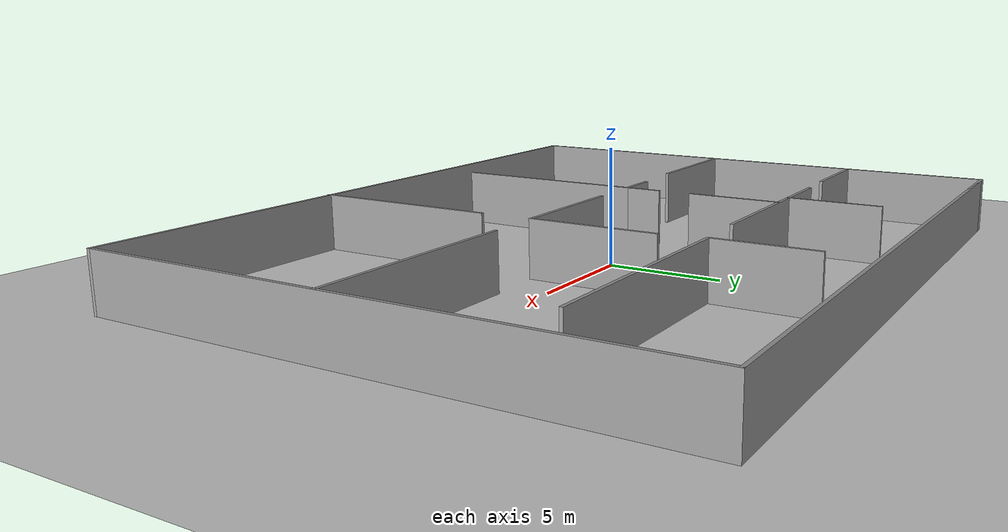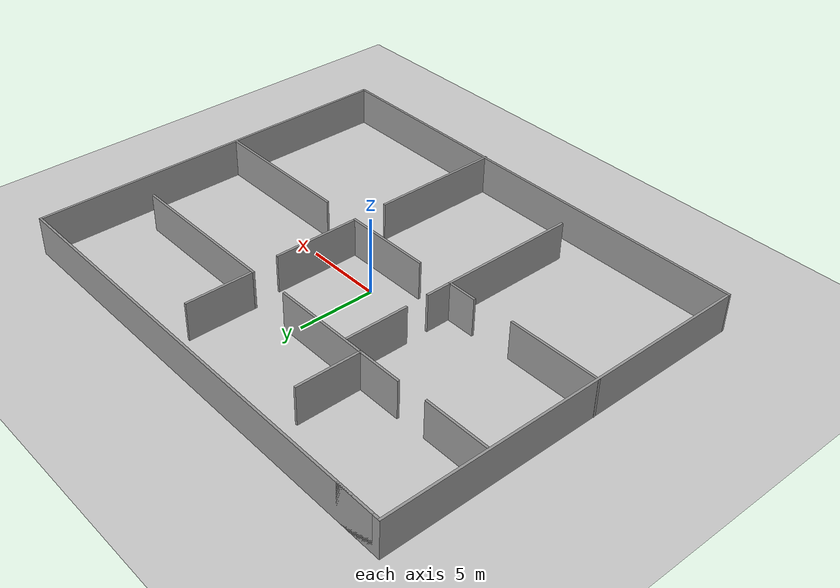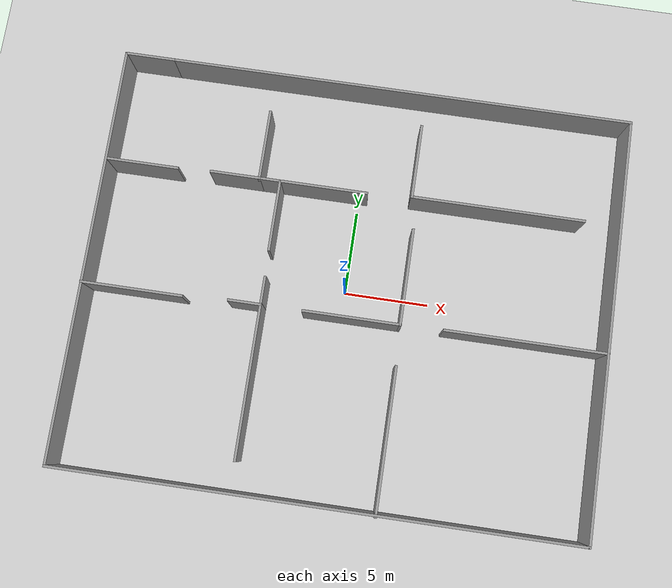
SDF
<sdf version="1.6">
 <world name="default">
  <light name="sun" type="directional">
   <pose>0 0 10 0 -0 0</pose>
   <diffuse>0.8 0.8 0.8 1</diffuse>
   <specular>0.2 0.2 0.2 1</specular>
   <attenuation>
    <range>1000</range>
    <constant>0.9</constant>
    <linear>0.01</linear>
    <quadratic>0.001</quadratic>
   </attenuation>
   <direction>-0.5 0.1 -0.9</direction>
  </light>
  <model name="ground_plane">
   <static>1</static>
   <link name="link">
    <collision name="collision">
     <geometry><plane><normal>0 0 1</normal><size>100 100</size></plane></geometry>
     <surface>
      <contact><collide_bitmask>65535</collide_bitmask></contact>
      <friction><ode><mu>100</mu><mu2>50</mu2></ode></friction>
     </surface>
    </collision>
    <visual name="visual">
     <cast_shadows>0</cast_shadows>
     <geometry><plane><normal>0 0 1</normal><size>100 100</size></plane></geometry>
     <material>
      <script><uri>file://media/materials/scripts/gazebo.material</uri><name>Gazebo/Grey</name></script>
     </material>
    </visual>
   </link>
  </model>
  <gravity>0 0 -9.8</gravity>
  <magnetic_field>6e-06 2.3e-05 -4.2e-05</magnetic_field>
  <atmosphere type="adiabatic"/>
  <physics name="default_physics" default="0" type="ode">
   <max_step_size>0.001</max_step_size>
   <real_time_factor>1</real_time_factor>
   <real_time_update_rate>1000</real_time_update_rate>
  </physics>
  <scene><ambient>0.4 0.4 0.4 1</ambient><background>0.7 0.7 0.7 1</background><shadows>1</shadows></scene>
  <audio><device>default</device></audio>
  <spherical_coordinates>
   <surface_model>EARTH_WGS84</surface_model>
   <latitude_deg>0</latitude_deg>
   <longitude_deg>0</longitude_deg>
   <elevation>0</elevation>
   <heading_deg>0</heading_deg>
  </spherical_coordinates>
  <model name="project_4_world">
   <pose>0.160567 -0.130364 0 0 -0 0</pose>
   <link name="Wall_1">
    <collision name="Wall_1_Collision">
     <geometry><box><size>30 0.15 2.5</size></box></geometry>
     <pose>0 0 1.25 0 -0 0</pose>
    </collision>
    <visual name="Wall_1_Visual">
     <pose>0 0 1.25 0 -0 0</pose>
     <geometry><box><size>30 0.15 2.5</size></box></geometry>
     <material>
      <script><uri>file://media/materials/scripts/gazebo.material</uri><name>Gazebo/Grey</name></script>
      <ambient>1 1 1 1</ambient>
     </material>
     <meta><layer>0</layer></meta>
    </visual>
    <pose>0.257963 12.3353 0 0 -0 0</pose>
   </link>
   <link name="Wall_11">
    <collision name="Wall_11_Collision">
     <geometry><box><size>4.25 0.15 2.5</size></box></geometry>
     <pose>0 0 1.25 0 -0 0</pose>
    </collision>
    <visual name="Wall_11_Visual">
     <pose>0 0 1.25 0 -0 0</pose>
     <geometry><box><size>4.25 0.15 2.5</size></box></geometry>
     <material>
      <script><uri>file://media/materials/scripts/gazebo.material</uri><name>Gazebo/Grey</name></script>
      <ambient>1 1 1 1</ambient>
     </material>
     <meta><layer>0</layer></meta>
    </visual>
    <pose>-12.9589 5.71151 0 0 -0 0</pose>
   </link>
   <link name="Wall_14">
    <collision name="Wall_14_Collision">
     <geometry><box><size>3 0.15 2.5</size></box></geometry>
     <pose>0 0 1.25 0 -0 0</pose>
    </collision>
    <visual name="Wall_14_Visual">
     <pose>0 0 1.25 0 -0 0</pose>
     <geometry><box><size>3 0.15 2.5</size></box></geometry>
     <material>
      <script><uri>file://media/materials/scripts/gazebo.material</uri><name>Gazebo/Grey</name></script>
      <ambient>1 1 1 1</ambient>
     </material>
     <meta><layer>0</layer></meta>
    </visual>
    <pose>-7.46996 5.80277 0 0 -0 0</pose>
   </link>
   <link name="Wall_15">
    <collision name="Wall_15_Collision">
     <geometry><box><size>4.25 0.15 2.5</size></box></geometry>
     <pose>0 0 1.25 0 -0 0</pose>
    </collision>
    <visual name="Wall_15_Visual">
     <pose>0 0 1.25 0 -0 0</pose>
     <geometry><box><size>4.25 0.15 2.5</size></box></geometry>
     <material>
      <script><uri>file://media/materials/scripts/gazebo.material</uri><name>Gazebo/Grey</name></script>
      <ambient>1 1 1 1</ambient>
     </material>
     <meta><layer>0</layer></meta>
    </visual>
    <pose>-6.04496 7.85277 0 0 -0 1.5708</pose>
   </link>
   <link name="Wall_17">
    <collision name="Wall_17_Collision">
     <geometry><box><size>6.5 0.15 2.5</size></box></geometry>
     <pose>0 0 1.25 0 -0 0</pose>
    </collision>
    <visual name="Wall_17_Visual">
     <pose>0 0 1.25 0 -0 0</pose>
     <geometry><box><size>6.5 0.15 2.5</size></box></geometry>
     <material>
      <script><uri>file://media/materials/scripts/gazebo.material</uri><name>Gazebo/Grey</name></script>
      <ambient>1 1 1 1</ambient>
     </material>
     <meta><layer>0</layer></meta>
    </visual>
    <pose>-2.86996 5.80277 0 0 -0 0</pose>
   </link>
   <link name="Wall_19">
    <collision name="Wall_19_Collision">
     <geometry><box><size>10.25 0.15 2.5</size></box></geometry>
     <pose>0 0 1.25 0 -0 0</pose>
    </collision>
    <visual name="Wall_19_Visual">
     <pose>0 0 1.25 0 -0 0</pose>
     <geometry><box><size>10.25 0.15 2.5</size></box></geometry>
     <material>
      <script><uri>file://media/materials/scripts/gazebo.material</uri><name>Gazebo/Grey</name></script>
      <ambient>1 1 1 1</ambient>
     </material>
     <meta><layer>0</layer></meta>
    </visual>
    <pose>8.00837 5.96322 0 0 -0 0</pose>
   </link>
   <link name="Wall_2">
    <collision name="Wall_2_Collision">
     <geometry><box><size>24.75 0.15 2.5</size></box></geometry>
     <pose>0 0 1.25 0 -0 0</pose>
    </collision>
    <visual name="Wall_2_Visual">
     <pose>0 0 1.25 0 -0 0</pose>
     <geometry><box><size>24.75 0.15 2.5</size></box></geometry>
     <material>
      <script><uri>file://media/materials/scripts/gazebo.material</uri><name>Gazebo/Grey</name></script>
      <ambient>1 1 1 1</ambient>
     </material>
     <meta><layer>0</layer></meta>
    </visual>
    <pose>15.183 0.035255 0 0 -0 -1.5708</pose>
   </link>
   <link name="Wall_21">
    <collision name="Wall_21_Collision">
     <geometry><box><size>4.5 0.15 2.5</size></box></geometry>
     <pose>0 0 1.25 0 -0 0</pose>
    </collision>
    <visual name="Wall_21_Visual">
     <pose>0 0 1.25 0 -0 0</pose>
     <geometry><box><size>4.5 0.15 2.5</size></box></geometry>
     <material>
      <script><uri>file://media/materials/scripts/gazebo.material</uri><name>Gazebo/Grey</name></script>
      <ambient>1 1 1 1</ambient>
     </material>
     <meta><layer>0</layer></meta>
    </visual>
    <pose>2.95837 8.13822 0 0 -0 1.5708</pose>
   </link>
   <link name="Wall_23">
    <collision name="Wall_23_Collision">
     <geometry><box><size>6 0.15 2.5</size></box></geometry>
     <pose>0 0 1.25 0 -0 0</pose>
    </collision>
    <visual name="Wall_23_Visual">
     <pose>0 0 1.25 0 -0 0</pose>
     <geometry><box><size>6 0.15 2.5</size></box></geometry>
     <material>
      <script><uri>file://media/materials/scripts/gazebo.material</uri><name>Gazebo/Grey</name></script>
      <ambient>1 1 1 1</ambient>
     </material>
     <meta><layer>0</layer></meta>
    </visual>
    <pose>-12.258 -1.75084 0 0 -0 0</pose>
   </link>
   <link name="Wall_25">
    <collision name="Wall_25_Collision">
     <geometry><box><size>4.25 0.15 2.5</size></box></geometry>
     <pose>0 0 1.25 0 -0 0</pose>
    </collision>
    <visual name="Wall_25_Visual">
     <pose>0 0 1.25 0 -0 0</pose>
     <geometry><box><size>4.25 0.15 2.5</size></box></geometry>
     <material>
      <script><uri>file://media/materials/scripts/gazebo.material</uri><name>Gazebo/Grey</name></script>
      <ambient>1 1 1 1</ambient>
     </material>
     <meta><layer>0</layer></meta>
    </visual>
    <pose>-4.80889 3.70042 0 0 -0 -1.5708</pose>
   </link>
   <link name="Wall_27">
    <collision name="Wall_27_Collision">
     <geometry><box><size>2 0.15 2.5</size></box></geometry>
     <pose>0 0 1.25 0 -0 0</pose>
    </collision>
    <visual name="Wall_27_Visual">
     <pose>0 0 1.25 0 -0 0</pose>
     <geometry><box><size>2 0.15 2.5</size></box></geometry>
     <material>
      <script><uri>file://media/materials/scripts/gazebo.material</uri><name>Gazebo/Grey</name></script>
      <ambient>1 1 1 1</ambient>
     </material>
     <meta><layer>0</layer></meta>
    </visual>
    <pose>-5.6927 -1.59124 0 0 -0 0</pose>
   </link>
   <link name="Wall_3">
    <collision name="Wall_3_Collision">
     <geometry><box><size>30.5 0.15 2.5</size></box></geometry>
     <pose>0 0 1.25 0 -0 0</pose>
    </collision>
    <visual name="Wall_3_Visual">
     <pose>0 0 1.25 0 -0 0</pose>
     <geometry><box><size>30.5 0.15 2.5</size></box></geometry>
     <material>
      <script><uri>file://media/materials/scripts/gazebo.material</uri><name>Gazebo/Grey</name></script>
      <ambient>1 1 1 1</ambient>
     </material>
     <meta><layer>0</layer></meta>
    </visual>
    <pose>0.007963 -12.2647 0 0 -0 3.14159</pose>
   </link>
   <link name="Wall_30">
    <collision name="Wall_30_Collision">
     <geometry><box><size>1.75 0.15 2.5</size></box></geometry>
     <pose>0 0 1.25 0 -0 0</pose>
    </collision>
    <visual name="Wall_30_Visual">
     <pose>0 0 1.25 0 -0 0</pose>
     <geometry><box><size>1.75 0.15 2.5</size></box></geometry>
     <material>
      <script><uri>file://media/materials/scripts/gazebo.material</uri><name>Gazebo/Grey</name></script>
      <ambient>1 1 1 1</ambient>
     </material>
     <meta><layer>0</layer></meta>
    </visual>
    <pose>-4.7677 -0.791238 0 0 -0 1.5708</pose>
   </link>
   <link name="Wall_32">
    <collision name="Wall_32_Collision">
     <geometry><box><size>5.75 0.15 2.5</size></box></geometry>
     <pose>0 0 1.25 0 -0 0</pose>
    </collision>
    <visual name="Wall_32_Visual">
     <pose>0 0 1.25 0 -0 0</pose>
     <geometry><box><size>5.75 0.15 2.5</size></box></geometry>
     <material>
      <script><uri>file://media/materials/scripts/gazebo.material</uri><name>Gazebo/Grey</name></script>
      <ambient>1 1 1 1</ambient>
     </material>
     <meta><layer>0</layer></meta>
    </visual>
    <pose>0.491532 -1.59124 0 0 -0 0</pose>
   </link>
   <link name="Wall_33">
    <collision name="Wall_33_Collision">
     <geometry><box><size>5.75 0.15 2.5</size></box></geometry>
     <pose>0 0 1.25 0 -0 0</pose>
    </collision>
    <visual name="Wall_33_Visual">
     <pose>0 0 1.25 0 -0 0</pose>
     <geometry><box><size>5.75 0.15 2.5</size></box></geometry>
     <material>
      <script><uri>file://media/materials/scripts/gazebo.material</uri><name>Gazebo/Grey</name></script>
      <ambient>1 1 1 1</ambient>
     </material>
     <meta><layer>0</layer></meta>
    </visual>
    <pose>3.29153 1.20876 0 0 -0 1.5708</pose>
   </link>
   <link name="Wall_35">
    <collision name="Wall_35_Collision">
     <geometry><box><size>9.5 0.15 2.5</size></box></geometry>
     <pose>0 0 1.25 0 -0 0</pose>
    </collision>
    <visual name="Wall_35_Visual">
     <pose>0 0 1.25 0 -0 0</pose>
     <geometry><box><size>9.5 0.15 2.5</size></box></geometry>
     <material>
      <script><uri>file://media/materials/scripts/gazebo.material</uri><name>Gazebo/Grey</name></script>
      <ambient>1 1 1 1</ambient>
     </material>
     <meta><layer>0</layer></meta>
    </visual>
    <pose>10.5062 -1.53804 0 0 -0 0</pose>
   </link>
   <link name="Wall_37">
    <collision name="Wall_37_Collision">
     <geometry><box><size>9 0.15 2.5</size></box></geometry>
     <pose>0 0 1.25 0 -0 0</pose>
    </collision>
    <visual name="Wall_37_Visual">
     <pose>0 0 1.25 0 -0 0</pose>
     <geometry><box><size>9 0.15 2.5</size></box></geometry>
     <material>
      <script><uri>file://media/materials/scripts/gazebo.material</uri><name>Gazebo/Grey</name></script>
      <ambient>1 1 1 1</ambient>
     </material>
     <meta><layer>0</layer></meta>
    </visual>
    <pose>-4.7677 -6.01624 0 0 -0 -1.5708</pose>
   </link>
   <link name="Wall_39">
    <collision name="Wall_39_Collision">
     <geometry><box><size>8.5 0.15 2.5</size></box></geometry>
     <pose>0 0 1.25 0 -0 0</pose>
    </collision>
    <visual name="Wall_39_Visual">
     <pose>0 0 1.25 0 -0 0</pose>
     <geometry><box><size>8.5 0.15 2.5</size></box></geometry>
     <material>
      <script><uri>file://media/materials/scripts/gazebo.material</uri><name>Gazebo/Grey</name></script>
      <ambient>1 1 1 1</ambient>
     </material>
     <meta><layer>0</layer></meta>
    </visual>
    <pose>3.38397 -8.16026 0 0 -0 -1.5708</pose>
   </link>
   <link name="Wall_4">
    <collision name="Wall_4_Collision">
     <geometry><box><size>24.75 0.15 2.5</size></box></geometry>
     <pose>0 0 1.25 0 -0 0</pose>
    </collision>
    <visual name="Wall_4_Visual">
     <pose>0 0 1.25 0 -0 0</pose>
     <geometry><box><size>24.75 0.15 2.5</size></box></geometry>
     <material>
      <script><uri>file://media/materials/scripts/gazebo.material</uri><name>Gazebo/Grey</name></script>
      <ambient>1 1 1 1</ambient>
     </material>
     <meta><layer>0</layer></meta>
    </visual>
    <pose>-15.167 0.035255 0 0 -0 1.5708</pose>
   </link>
   <link name="Wall_5">
    <collision name="Wall_5_Collision">
     <geometry><box><size>3 0.15 2.5</size></box></geometry>
     <pose>0 0 1.25 0 -0 0</pose>
    </collision>
    <visual name="Wall_5_Visual">
     <pose>0 0 1.25 0 -0 0</pose>
     <geometry><box><size>3 0.15 2.5</size></box></geometry>
     <material>
      <script><uri>file://media/materials/scripts/gazebo.material</uri><name>Gazebo/Grey</name></script>
      <ambient>1 1 1 1</ambient>
     </material>
     <meta><layer>0</layer></meta>
    </visual>
    <pose>-13.742 12.3353 0 0 -0 0</pose>
   </link>
   <static>1</static>
  </model>
 </world>
</sdf>
